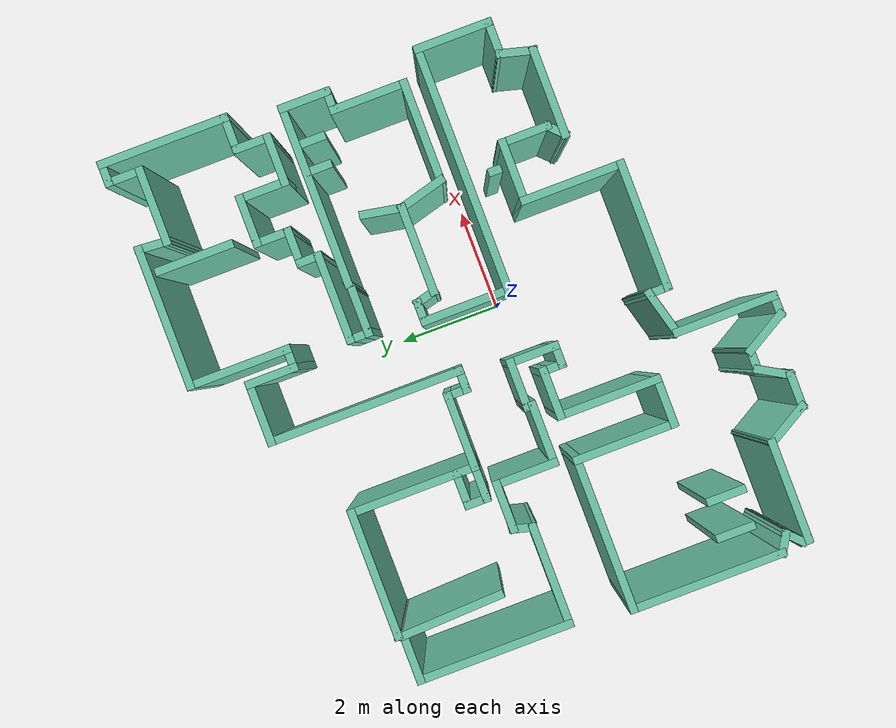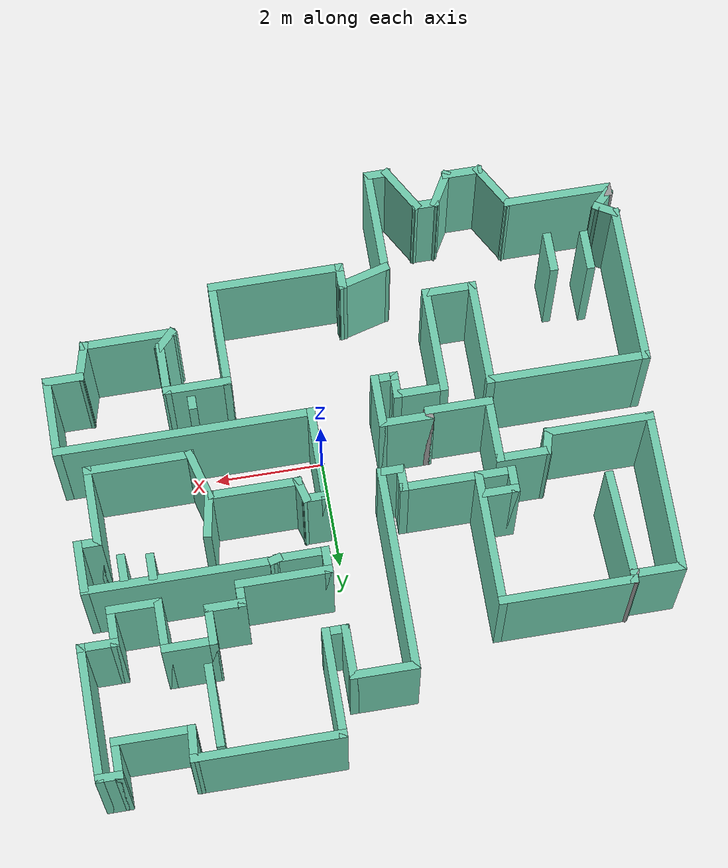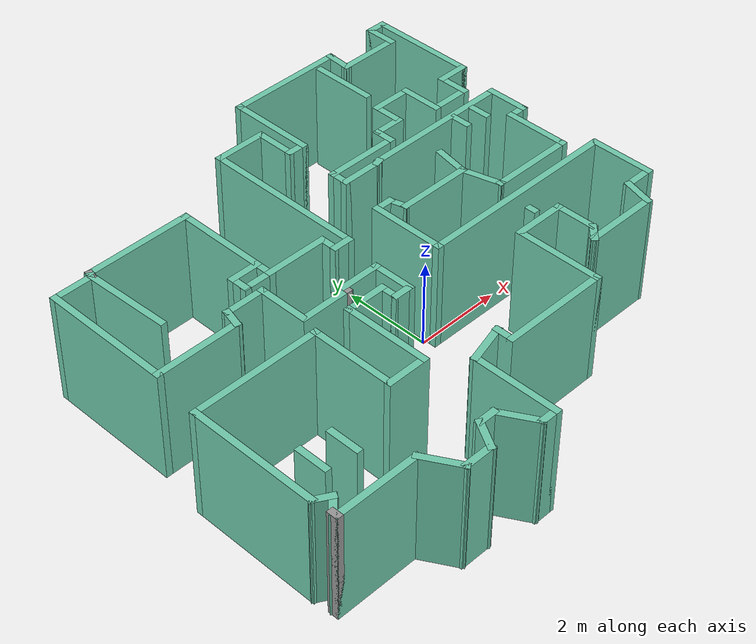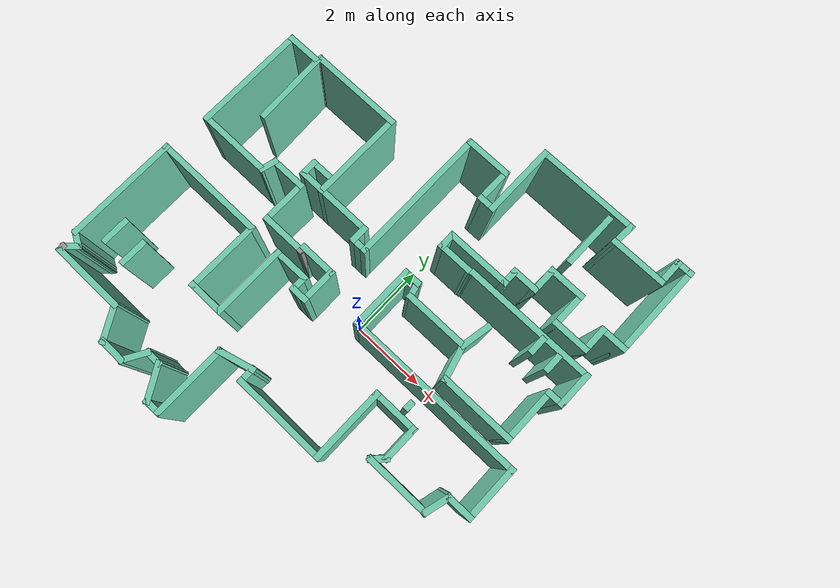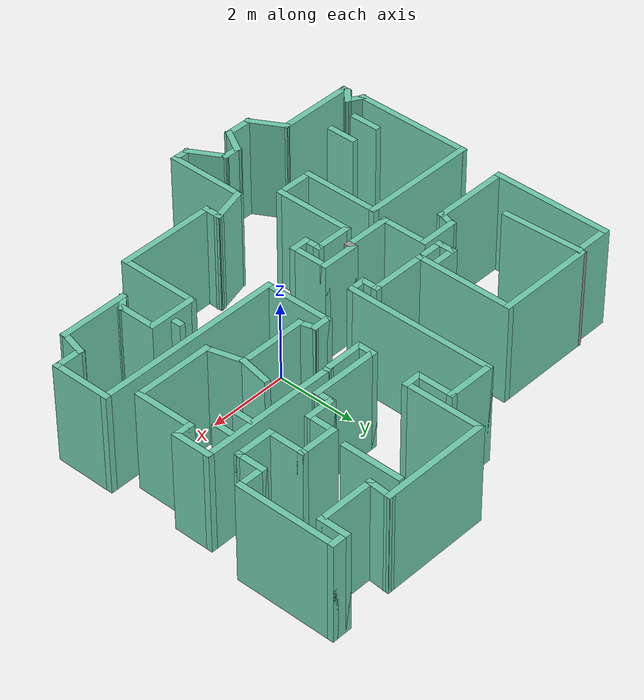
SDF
<sdf version="1.6">
 <model name="map_28">
  <pose>-0.603617 0.610052 0 0 -0 0</pose>
  <link name="Wall_0">
   <collision name="Wall_0_Collision">
    <geometry><box><size>2.75 0.15 2.5</size></box></geometry>
    <pose>0 0 1.25 0 -0 0</pose>
   </collision>
   <visual name="Wall_0_Visual">
    <pose>0 0 1.25 0 -0 0</pose>
    <geometry><box><size>2.75 0.15 2.5</size></box></geometry>
    <material>
     <script><uri>file://media/materials/scripts/gazebo.material</uri><name>Gazebo/Grey</name></script>
     <ambient>0.435294 0.796078 0.67451 1</ambient>
    </material>
    <meta><layer>0</layer></meta>
   </visual>
   <pose>2.44979 5.13882 0 0 -0 3.14159</pose>
  </link>
  <link name="Wall_1">
   <collision name="Wall_1_Collision">
    <geometry><box><size>2 0.15 2.5</size></box></geometry>
    <pose>0 0 1.25 0 -0 0</pose>
   </collision>
   <visual name="Wall_1_Visual">
    <pose>0 0 1.25 0 -0 0</pose>
    <geometry><box><size>2 0.15 2.5</size></box></geometry>
    <material>
     <script><uri>file://media/materials/scripts/gazebo.material</uri><name>Gazebo/Grey</name></script>
     <ambient>0.435294 0.796078 0.67451 1</ambient>
    </material>
    <meta><layer>0</layer></meta>
   </visual>
   <pose>1.14979 4.21382 0 0 -0 -1.5708</pose>
  </link>
  <link name="Wall_10">
   <collision name="Wall_10_Collision">
    <geometry><box><size>2.5 0.15 2.5</size></box></geometry>
    <pose>0 0 1.25 0 -0 0</pose>
   </collision>
   <visual name="Wall_10_Visual">
    <pose>0 0 1.25 0 -0 0</pose>
    <geometry><box><size>2.5 0.15 2.5</size></box></geometry>
    <material>
     <script><uri>file://media/materials/scripts/gazebo.material</uri><name>Gazebo/Grey</name></script>
     <ambient>0.435294 0.796078 0.67451 1</ambient>
    </material>
    <meta><layer>0</layer></meta>
   </visual>
   <pose>-3.17521 3.23882 0 0 -0 3.14159</pose>
  </link>
  <link name="Wall_100">
   <collision name="Wall_100_Collision">
    <geometry><box><size>1 0.15 2.5</size></box></geometry>
    <pose>0 0 1.25 0 -0 0</pose>
   </collision>
   <visual name="Wall_100_Visual">
    <pose>0 0 1.25 0 -0 0</pose>
    <geometry><box><size>1 0.15 2.5</size></box></geometry>
    <material>
     <script><uri>file://media/materials/scripts/gazebo.material</uri><name>Gazebo/Grey</name></script>
     <ambient>0.435294 0.796078 0.67451 1</ambient>
    </material>
    <meta><layer>0</layer></meta>
   </visual>
   <pose>4.38795 2.27226 0 0 -0 0</pose>
  </link>
  <link name="Wall_101">
   <collision name="Wall_101_Collision">
    <geometry><box><size>0.75 0.15 2.5</size></box></geometry>
    <pose>0 0 1.25 0 -0 0</pose>
   </collision>
   <visual name="Wall_101_Visual">
    <pose>0 0 1.25 0 -0 0</pose>
    <geometry><box><size>0.75 0.15 2.5</size></box></geometry>
    <material>
     <script><uri>file://media/materials/scripts/gazebo.material</uri><name>Gazebo/Grey</name></script>
     <ambient>0.435294 0.796078 0.67451 1</ambient>
    </material>
    <meta><layer>0</layer></meta>
   </visual>
   <pose>4.81295 2.57226 0 0 -0 1.5708</pose>
  </link>
  <link name="Wall_102">
   <collision name="Wall_102_Collision">
    <geometry><box><size>0.75 0.15 2.5</size></box></geometry>
    <pose>0 0 1.25 0 -0 0</pose>
   </collision>
   <visual name="Wall_102_Visual">
    <pose>0 0 1.25 0 -0 0</pose>
    <geometry><box><size>0.75 0.15 2.5</size></box></geometry>
    <material>
     <script><uri>file://media/materials/scripts/gazebo.material</uri><name>Gazebo/Grey</name></script>
     <ambient>0.435294 0.796078 0.67451 1</ambient>
    </material>
    <meta><layer>0</layer></meta>
   </visual>
   <pose>5.11295 2.87226 0 0 -0 0</pose>
  </link>
  <link name="Wall_103">
   <collision name="Wall_103_Collision">
    <geometry><box><size>2.5 0.15 2.5</size></box></geometry>
    <pose>0 0 1.25 0 -0 0</pose>
   </collision>
   <visual name="Wall_103_Visual">
    <pose>0 0 1.25 0 -0 0</pose>
    <geometry><box><size>2.5 0.15 2.5</size></box></geometry>
    <material>
     <script><uri>file://media/materials/scripts/gazebo.material</uri><name>Gazebo/Grey</name></script>
     <ambient>0.435294 0.796078 0.67451 1</ambient>
    </material>
    <meta><layer>0</layer></meta>
   </visual>
   <pose>5.41295 4.04726 0 0 -0 1.5708</pose>
  </link>
  <link name="Wall_104">
   <collision name="Wall_104_Collision">
    <geometry><box><size>0.5 0.15 2.5</size></box></geometry>
    <pose>0 0 1.25 0 -0 0</pose>
   </collision>
   <visual name="Wall_104_Visual">
    <pose>0 0 1.25 0 -0 0</pose>
    <geometry><box><size>0.5 0.15 2.5</size></box></geometry>
    <material>
     <script><uri>file://media/materials/scripts/gazebo.material</uri><name>Gazebo/Grey</name></script>
     <ambient>0.435294 0.796078 0.67451 1</ambient>
    </material>
    <meta><layer>0</layer></meta>
   </visual>
   <pose>5.23795 5.22226 0 0 -0 3.14159</pose>
  </link>
  <link name="Wall_105">
   <collision name="Wall_105_Collision">
    <geometry><box><size>0.75 0.15 2.5</size></box></geometry>
    <pose>0 0 1.25 0 -0 0</pose>
   </collision>
   <visual name="Wall_105_Visual">
    <pose>0 0 1.25 0 -0 0</pose>
    <geometry><box><size>0.75 0.15 2.5</size></box></geometry>
    <material>
     <script><uri>file://media/materials/scripts/gazebo.material</uri><name>Gazebo/Grey</name></script>
     <ambient>0.435294 0.796078 0.67451 1</ambient>
    </material>
    <meta><layer>0</layer></meta>
   </visual>
   <pose>5.06295 4.92226 0 0 -0 -1.5708</pose>
  </link>
  <link name="Wall_108">
   <collision name="Wall_108_Collision">
    <geometry><box><size>1.5 0.15 2.5</size></box></geometry>
    <pose>0 0 1.25 0 -0 0</pose>
   </collision>
   <visual name="Wall_108_Visual">
    <pose>0 0 1.25 0 -0 0</pose>
    <geometry><box><size>1.5 0.15 2.5</size></box></geometry>
    <material>
     <script><uri>file://media/materials/scripts/gazebo.material</uri><name>Gazebo/Grey</name></script>
     <ambient>0.435294 0.796078 0.67451 1</ambient>
    </material>
    <meta><layer>0</layer></meta>
   </visual>
   <pose>4.38795 4.62226 0 0 -0 3.14159</pose>
  </link>
  <link name="Wall_109">
   <collision name="Wall_109_Collision">
    <geometry><box><size>0.667875 0.15 2.5</size></box></geometry>
    <pose>0 0 1.25 0 -0 0</pose>
   </collision>
   <visual name="Wall_109_Visual">
    <pose>0 0 1.25 0 -0 0</pose>
    <geometry><box><size>0.667875 0.15 2.5</size></box></geometry>
    <material>
     <script><uri>file://media/materials/scripts/gazebo.material</uri><name>Gazebo/Grey</name></script>
     <ambient>0.435294 0.796078 0.67451 1</ambient>
    </material>
    <meta><layer>0</layer></meta>
   </visual>
   <pose>3.73137 4.88054 0 0 -0 1.4996</pose>
  </link>
  <link name="Wall_11">
   <collision name="Wall_11_Collision">
    <geometry><box><size>0.15 0.15 2.5</size></box></geometry>
    <pose>0 0 1.25 0 -0 0</pose>
   </collision>
   <visual name="Wall_11_Visual">
    <pose>0 0 1.25 0 -0 0</pose>
    <geometry><box><size>0.15 0.15 2.5</size></box></geometry>
    <material>
     <script><uri>file://media/materials/scripts/gazebo.material</uri><name>Gazebo/Grey</name></script>
     <ambient>0.435294 0.796078 0.67451 1</ambient>
    </material>
    <meta><layer>0</layer></meta>
   </visual>
   <pose>-4.3502 3.23882 0 0 -0 0</pose>
  </link>
  <link name="Wall_112">
   <collision name="Wall_112_Collision">
    <geometry><box><size>1.5 0.15 2.5</size></box></geometry>
    <pose>0 0 1.25 0 -0 0</pose>
   </collision>
   <visual name="Wall_112_Visual">
    <pose>0 0 1.25 0 -0 0</pose>
    <geometry><box><size>1.5 0.15 2.5</size></box></geometry>
    <material>
     <script><uri>file://media/materials/scripts/gazebo.material</uri><name>Gazebo/Grey</name></script>
     <ambient>0.435294 0.796078 0.67451 1</ambient>
    </material>
    <meta><layer>0</layer></meta>
   </visual>
   <pose>3.26405 4.26407 0 0 -0 1.5708</pose>
  </link>
  <link name="Wall_114">
   <collision name="Wall_114_Collision">
    <geometry><box><size>2.01778 0.15 2.5</size></box></geometry>
    <pose>0 0 1.25 0 -0 0</pose>
   </collision>
   <visual name="Wall_114_Visual">
    <pose>0 0 1.25 0 -0 0</pose>
    <geometry><box><size>2.01778 0.15 2.5</size></box></geometry>
    <material>
     <script><uri>file://media/materials/scripts/gazebo.material</uri><name>Gazebo/Grey</name></script>
     <ambient>0.435294 0.796078 0.67451 1</ambient>
    </material>
    <meta><layer>0</layer></meta>
   </visual>
   <pose>-4.33787 2.20912 0 0 -0 1.61173</pose>
  </link>
  <link name="Wall_118">
   <collision name="Wall_118_Collision">
    <geometry><box><size>0.75 0.15 2.5</size></box></geometry>
    <pose>0 0 1.25 0 -0 0</pose>
   </collision>
   <visual name="Wall_118_Visual">
    <pose>0 0 1.25 0 -0 0</pose>
    <geometry><box><size>0.75 0.15 2.5</size></box></geometry>
    <material>
     <script><uri>file://media/materials/scripts/gazebo.material</uri><name>Gazebo/Grey</name></script>
     <ambient>0.435294 0.796078 0.67451 1</ambient>
    </material>
    <meta><layer>0</layer></meta>
   </visual>
   <pose>-2.30021 0.888824 0 0 -0 3.14159</pose>
  </link>
  <link name="Wall_119">
   <collision name="Wall_119_Collision">
    <geometry><box><size>0.5 0.15 2.5</size></box></geometry>
    <pose>0 0 1.25 0 -0 0</pose>
   </collision>
   <visual name="Wall_119_Visual">
    <pose>0 0 1.25 0 -0 0</pose>
    <geometry><box><size>0.5 0.15 2.5</size></box></geometry>
    <material>
     <script><uri>file://media/materials/scripts/gazebo.material</uri><name>Gazebo/Grey</name></script>
     <ambient>0.435294 0.796078 0.67451 1</ambient>
    </material>
    <meta><layer>0</layer></meta>
   </visual>
   <pose>-2.6002 1.06382 0 0 -0 1.5708</pose>
  </link>
  <link name="Wall_120">
   <collision name="Wall_120_Collision">
    <geometry><box><size>0.75 0.15 2.5</size></box></geometry>
    <pose>0 0 1.25 0 -0 0</pose>
   </collision>
   <visual name="Wall_120_Visual">
    <pose>0 0 1.25 0 -0 0</pose>
    <geometry><box><size>0.75 0.15 2.5</size></box></geometry>
    <material>
     <script><uri>file://media/materials/scripts/gazebo.material</uri><name>Gazebo/Grey</name></script>
     <ambient>0.435294 0.796078 0.67451 1</ambient>
    </material>
    <meta><layer>0</layer></meta>
   </visual>
   <pose>-2.30021 1.23882 0 0 -0 0</pose>
  </link>
  <link name="Wall_122">
   <collision name="Wall_122_Collision">
    <geometry><box><size>0.852849 0.15 2.5</size></box></geometry>
    <pose>0 0 1.25 0 -0 0</pose>
   </collision>
   <visual name="Wall_122_Visual">
    <pose>0 0 1.25 0 -0 0</pose>
    <geometry><box><size>0.852849 0.15 2.5</size></box></geometry>
    <material>
     <script><uri>file://media/materials/scripts/gazebo.material</uri><name>Gazebo/Grey</name></script>
     <ambient>0.435294 0.796078 0.67451 1</ambient>
    </material>
    <meta><layer>0</layer></meta>
   </visual>
   <pose>2.85332 0.81477 0 0 -0 -1.75327</pose>
  </link>
  <link name="Wall_124">
   <collision name="Wall_124_Collision">
    <geometry><box><size>0.5 0.15 2.5</size></box></geometry>
    <pose>0 0 1.25 0 -0 0</pose>
   </collision>
   <visual name="Wall_124_Visual">
    <pose>0 0 1.25 0 -0 0</pose>
    <geometry><box><size>0.5 0.15 2.5</size></box></geometry>
    <material>
     <script><uri>file://media/materials/scripts/gazebo.material</uri><name>Gazebo/Grey</name></script>
     <ambient>0.435294 0.796078 0.67451 1</ambient>
    </material>
    <meta><layer>0</layer></meta>
   </visual>
   <pose>3.9811 1.60989 0 0 -0 -1.5708</pose>
  </link>
  <link name="Wall_126">
   <collision name="Wall_126_Collision">
    <geometry><box><size>0.5 0.15 2.5</size></box></geometry>
    <pose>0 0 1.25 0 -0 0</pose>
   </collision>
   <visual name="Wall_126_Visual">
    <pose>0 0 1.25 0 -0 0</pose>
    <geometry><box><size>0.5 0.15 2.5</size></box></geometry>
    <material>
     <script><uri>file://media/materials/scripts/gazebo.material</uri><name>Gazebo/Grey</name></script>
     <ambient>0.435294 0.796078 0.67451 1</ambient>
    </material>
    <meta><layer>0</layer></meta>
   </visual>
   <pose>4.48997 1.54049 0 0 -0 -1.5708</pose>
  </link>
  <link name="Wall_128">
   <collision name="Wall_128_Collision">
    <geometry><box><size>0.25 0.15 2.5</size></box></geometry>
    <pose>0 0 1.25 0 -0 0</pose>
   </collision>
   <visual name="Wall_128_Visual">
    <pose>0 0 1.25 0 -0 0</pose>
    <geometry><box><size>0.25 0.15 2.5</size></box></geometry>
    <material>
     <script><uri>file://media/materials/scripts/gazebo.material</uri><name>Gazebo/Grey</name></script>
     <ambient>0.435294 0.796078 0.67451 1</ambient>
    </material>
    <meta><layer>0</layer></meta>
   </visual>
   <pose>2.82457 -1.31835 0 0 -0 -1.5708</pose>
  </link>
  <link name="Wall_130">
   <collision name="Wall_130_Collision">
    <geometry><box><size>0.75 0.15 2.5</size></box></geometry>
    <pose>0 0 1.25 0 -0 0</pose>
   </collision>
   <visual name="Wall_130_Visual">
    <pose>0 0 1.25 0 -0 0</pose>
    <geometry><box><size>0.75 0.15 2.5</size></box></geometry>
    <material>
     <script><uri>file://media/materials/scripts/gazebo.material</uri><name>Gazebo/Grey</name></script>
     <ambient>0.435294 0.796078 0.67451 1</ambient>
    </material>
    <meta><layer>0</layer></meta>
   </visual>
   <pose>-4.73914 -3.07184 0 0 -0 -1.5708</pose>
  </link>
  <link name="Wall_132">
   <collision name="Wall_132_Collision">
    <geometry><box><size>0.75 0.15 2.5</size></box></geometry>
    <pose>0 0 1.25 0 -0 0</pose>
   </collision>
   <visual name="Wall_132_Visual">
    <pose>0 0 1.25 0 -0 0</pose>
    <geometry><box><size>0.75 0.15 2.5</size></box></geometry>
    <material>
     <script><uri>file://media/materials/scripts/gazebo.material</uri><name>Gazebo/Grey</name></script>
     <ambient>0.435294 0.796078 0.67451 1</ambient>
    </material>
    <meta><layer>0</layer></meta>
   </visual>
   <pose>-4.06835 -3.14124 0 0 -0 -1.5708</pose>
  </link>
  <link name="Wall_14">
   <collision name="Wall_14_Collision">
    <geometry><box><size>0.25 0.15 2.5</size></box></geometry>
    <pose>0 0 1.25 0 -0 0</pose>
   </collision>
   <visual name="Wall_14_Visual">
    <pose>0 0 1.25 0 -0 0</pose>
    <geometry><box><size>0.25 0.15 2.5</size></box></geometry>
    <material>
     <script><uri>file://media/materials/scripts/gazebo.material</uri><name>Gazebo/Grey</name></script>
     <ambient>1 1 1 1</ambient>
    </material>
    <meta><layer>0</layer></meta>
   </visual>
   <pose>-4.36315 3.19053 0 0 -0 -1.8326</pose>
  </link>
  <link name="Wall_15">
   <collision name="Wall_15_Collision">
    <geometry><box><size>1 0.15 2.5</size></box></geometry>
    <pose>0 0 1.25 0 -0 0</pose>
   </collision>
   <visual name="Wall_15_Visual">
    <pose>0 0 1.25 0 -0 0</pose>
    <geometry><box><size>1 0.15 2.5</size></box></geometry>
    <material>
     <script><uri>file://media/materials/scripts/gazebo.material</uri><name>Gazebo/Grey</name></script>
     <ambient>0.435294 0.796078 0.67451 1</ambient>
    </material>
    <meta><layer>0</layer></meta>
   </visual>
   <pose>-4.80109 3.14223 0 0 -0 3.14159</pose>
  </link>
  <link name="Wall_16">
   <collision name="Wall_16_Collision">
    <geometry><box><size>3 0.15 2.5</size></box></geometry>
    <pose>0 0 1.25 0 -0 0</pose>
   </collision>
   <visual name="Wall_16_Visual">
    <pose>0 0 1.25 0 -0 0</pose>
    <geometry><box><size>3 0.15 2.5</size></box></geometry>
    <material>
     <script><uri>file://media/materials/scripts/gazebo.material</uri><name>Gazebo/Grey</name></script>
     <ambient>0.435294 0.796078 0.67451 1</ambient>
    </material>
    <meta><layer>0</layer></meta>
   </visual>
   <pose>-5.22609 1.71723 0 0 -0 -1.5708</pose>
  </link>
  <link name="Wall_17">
   <collision name="Wall_17_Collision">
    <geometry><box><size>2 0.15 2.5</size></box></geometry>
    <pose>0 0 1.25 0 -0 0</pose>
   </collision>
   <visual name="Wall_17_Visual">
    <pose>0 0 1.25 0 -0 0</pose>
    <geometry><box><size>2 0.15 2.5</size></box></geometry>
    <material>
     <script><uri>file://media/materials/scripts/gazebo.material</uri><name>Gazebo/Grey</name></script>
     <ambient>0.435294 0.796078 0.67451 1</ambient>
    </material>
    <meta><layer>0</layer></meta>
   </visual>
   <pose>-4.30109 0.292231 0 0 -0 0</pose>
  </link>
  <link name="Wall_18">
   <collision name="Wall_18_Collision">
    <geometry><box><size>0.5 0.15 2.5</size></box></geometry>
    <pose>0 0 1.25 0 -0 0</pose>
   </collision>
   <visual name="Wall_18_Visual">
    <pose>0 0 1.25 0 -0 0</pose>
    <geometry><box><size>0.5 0.15 2.5</size></box></geometry>
    <material>
     <script><uri>file://media/materials/scripts/gazebo.material</uri><name>Gazebo/Grey</name></script>
     <ambient>0.435294 0.796078 0.67451 1</ambient>
    </material>
    <meta><layer>0</layer></meta>
   </visual>
   <pose>-3.33079 0.461268 0 0 -0 1.309</pose>
  </link>
  <link name="Wall_19">
   <collision name="Wall_19_Collision">
    <geometry><box><size>1 0.15 2.5</size></box></geometry>
    <pose>0 0 1.25 0 -0 0</pose>
   </collision>
   <visual name="Wall_19_Visual">
    <pose>0 0 1.25 0 -0 0</pose>
    <geometry><box><size>1 0.15 2.5</size></box></geometry>
    <material>
     <script><uri>file://media/materials/scripts/gazebo.material</uri><name>Gazebo/Grey</name></script>
     <ambient>0.435294 0.796078 0.67451 1</ambient>
    </material>
    <meta><layer>0</layer></meta>
   </visual>
   <pose>-2.8605 0.630306 0 0 -0 0</pose>
  </link>
  <link name="Wall_2">
   <collision name="Wall_2_Collision">
    <geometry><box><size>0.5 0.15 2.5</size></box></geometry>
    <pose>0 0 1.25 0 -0 0</pose>
   </collision>
   <visual name="Wall_2_Visual">
    <pose>0 0 1.25 0 -0 0</pose>
    <geometry><box><size>0.5 0.15 2.5</size></box></geometry>
    <material>
     <script><uri>file://media/materials/scripts/gazebo.material</uri><name>Gazebo/Grey</name></script>
     <ambient>0.435294 0.796078 0.67451 1</ambient>
    </material>
    <meta><layer>0</layer></meta>
   </visual>
   <pose>0.974795 3.28882 0 0 -0 3.14159</pose>
  </link>
  <link name="Wall_22">
   <collision name="Wall_22_Collision">
    <geometry><box><size>1.25 0.15 2.5</size></box></geometry>
    <pose>0 0 1.25 0 -0 0</pose>
   </collision>
   <visual name="Wall_22_Visual">
    <pose>0 0 1.25 0 -0 0</pose>
    <geometry><box><size>1.25 0.15 2.5</size></box></geometry>
    <material>
     <script><uri>file://media/materials/scripts/gazebo.material</uri><name>Gazebo/Grey</name></script>
     <ambient>0.435294 0.796078 0.67451 1</ambient>
    </material>
    <meta><layer>0</layer></meta>
   </visual>
   <pose>-2.4355 0.080305 0 0 -0 -1.5708</pose>
  </link>
  <link name="Wall_23">
   <collision name="Wall_23_Collision">
    <geometry><box><size>1.25 0.15 2.5</size></box></geometry>
    <pose>0 0 1.25 0 -0 0</pose>
   </collision>
   <visual name="Wall_23_Visual">
    <pose>0 0 1.25 0 -0 0</pose>
    <geometry><box><size>1.25 0.15 2.5</size></box></geometry>
    <material>
     <script><uri>file://media/materials/scripts/gazebo.material</uri><name>Gazebo/Grey</name></script>
     <ambient>0.435294 0.796078 0.67451 1</ambient>
    </material>
    <meta><layer>0</layer></meta>
   </visual>
   <pose>-1.8855 -0.469695 0 0 -0 0</pose>
  </link>
  <link name="Wall_24">
   <collision name="Wall_24_Collision">
    <geometry><box><size>0.25 0.15 2.5</size></box></geometry>
    <pose>0 0 1.25 0 -0 0</pose>
   </collision>
   <visual name="Wall_24_Visual">
    <pose>0 0 1.25 0 -0 0</pose>
    <geometry><box><size>0.25 0.15 2.5</size></box></geometry>
    <material>
     <script><uri>file://media/materials/scripts/gazebo.material</uri><name>Gazebo/Grey</name></script>
     <ambient>1 1 1 1</ambient>
    </material>
    <meta><layer>0</layer></meta>
   </visual>
   <pose>-1.3355 -0.419695 0 0 -0 1.5708</pose>
  </link>
  <link name="Wall_25">
   <collision name="Wall_25_Collision">
    <geometry><box><size>1 0.15 2.5</size></box></geometry>
    <pose>0 0 1.25 0 -0 0</pose>
   </collision>
   <visual name="Wall_25_Visual">
    <pose>0 0 1.25 0 -0 0</pose>
    <geometry><box><size>1 0.15 2.5</size></box></geometry>
    <material>
     <script><uri>file://media/materials/scripts/gazebo.material</uri><name>Gazebo/Grey</name></script>
     <ambient>0.435294 0.796078 0.67451 1</ambient>
    </material>
    <meta><layer>0</layer></meta>
   </visual>
   <pose>-0.910501 -0.369695 0 0 -0 0</pose>
  </link>
  <link name="Wall_26">
   <collision name="Wall_26_Collision">
    <geometry><box><size>1 0.15 2.5</size></box></geometry>
    <pose>0 0 1.25 0 -0 0</pose>
   </collision>
   <visual name="Wall_26_Visual">
    <pose>0 0 1.25 0 -0 0</pose>
    <geometry><box><size>1 0.15 2.5</size></box></geometry>
    <material>
     <script><uri>file://media/materials/scripts/gazebo.material</uri><name>Gazebo/Grey</name></script>
     <ambient>0.435294 0.796078 0.67451 1</ambient>
    </material>
    <meta><layer>0</layer></meta>
   </visual>
   <pose>-0.485501 -0.794695 0 0 -0 -1.5708</pose>
  </link>
  <link name="Wall_27">
   <collision name="Wall_27_Collision">
    <geometry><box><size>0.5 0.15 2.5</size></box></geometry>
    <pose>0 0 1.25 0 -0 0</pose>
   </collision>
   <visual name="Wall_27_Visual">
    <pose>0 0 1.25 0 -0 0</pose>
    <geometry><box><size>0.5 0.15 2.5</size></box></geometry>
    <material>
     <script><uri>file://media/materials/scripts/gazebo.material</uri><name>Gazebo/Grey</name></script>
     <ambient>0.435294 0.796078 0.67451 1</ambient>
    </material>
    <meta><layer>0</layer></meta>
   </visual>
   <pose>-0.660501 -1.21969 0 0 -0 3.14159</pose>
  </link>
  <link name="Wall_3">
   <collision name="Wall_3_Collision">
    <geometry><box><size>1 0.15 2.5</size></box></geometry>
    <pose>0 0 1.25 0 -0 0</pose>
   </collision>
   <visual name="Wall_3_Visual">
    <pose>0 0 1.25 0 -0 0</pose>
    <geometry><box><size>1 0.15 2.5</size></box></geometry>
    <material>
     <script><uri>file://media/materials/scripts/gazebo.material</uri><name>Gazebo/Grey</name></script>
     <ambient>0.435294 0.796078 0.67451 1</ambient>
    </material>
    <meta><layer>0</layer></meta>
   </visual>
   <pose>0.799795 3.71382 0 0 -0 1.5708</pose>
  </link>
  <link name="Wall_34">
   <collision name="Wall_34_Collision">
    <geometry><box><size>0.5 0.15 2.5</size></box></geometry>
    <pose>0 0 1.25 0 -0 0</pose>
   </collision>
   <visual name="Wall_34_Visual">
    <pose>0 0 1.25 0 -0 0</pose>
    <geometry><box><size>0.5 0.15 2.5</size></box></geometry>
    <material>
     <script><uri>file://media/materials/scripts/gazebo.material</uri><name>Gazebo/Grey</name></script>
     <ambient>0.435294 0.796078 0.67451 1</ambient>
    </material>
    <meta><layer>0</layer></meta>
   </visual>
   <pose>-0.835501 -1.04469 0 0 -0 1.5708</pose>
  </link>
  <link name="Wall_37">
   <collision name="Wall_37_Collision">
    <geometry><box><size>1 0.15 2.5</size></box></geometry>
    <pose>0 0 1.25 0 -0 0</pose>
   </collision>
   <visual name="Wall_37_Visual">
    <pose>0 0 1.25 0 -0 0</pose>
    <geometry><box><size>1 0.15 2.5</size></box></geometry>
    <material>
     <script><uri>file://media/materials/scripts/gazebo.material</uri><name>Gazebo/Grey</name></script>
     <ambient>0.435294 0.796078 0.67451 1</ambient>
    </material>
    <meta><layer>0</layer></meta>
   </visual>
   <pose>-1.2605 -0.869695 0 0 -0 3.14159</pose>
  </link>
  <link name="Wall_38">
   <collision name="Wall_38_Collision">
    <geometry><box><size>2 0.15 2.5</size></box></geometry>
    <pose>0 0 1.25 0 -0 0</pose>
   </collision>
   <visual name="Wall_38_Visual">
    <pose>0 0 1.25 0 -0 0</pose>
    <geometry><box><size>2 0.15 2.5</size></box></geometry>
    <material>
     <script><uri>file://media/materials/scripts/gazebo.material</uri><name>Gazebo/Grey</name></script>
     <ambient>0.435294 0.796078 0.67451 1</ambient>
    </material>
    <meta><layer>0</layer></meta>
   </visual>
   <pose>-1.6855 -1.79469 0 0 -0 -1.5708</pose>
  </link>
  <link name="Wall_39">
   <collision name="Wall_39_Collision">
    <geometry><box><size>1 0.15 2.5</size></box></geometry>
    <pose>0 0 1.25 0 -0 0</pose>
   </collision>
   <visual name="Wall_39_Visual">
    <pose>0 0 1.25 0 -0 0</pose>
    <geometry><box><size>1 0.15 2.5</size></box></geometry>
    <material>
     <script><uri>file://media/materials/scripts/gazebo.material</uri><name>Gazebo/Grey</name></script>
     <ambient>0.435294 0.796078 0.67451 1</ambient>
    </material>
    <meta><layer>0</layer></meta>
   </visual>
   <pose>-2.1105 -2.7197 0 0 -0 3.14159</pose>
  </link>
  <link name="Wall_4">
   <collision name="Wall_4_Collision">
    <geometry><box><size>1.25 0.15 2.5</size></box></geometry>
    <pose>0 0 1.25 0 -0 0</pose>
   </collision>
   <visual name="Wall_4_Visual">
    <pose>0 0 1.25 0 -0 0</pose>
    <geometry><box><size>1.25 0.15 2.5</size></box></geometry>
    <material>
     <script><uri>file://media/materials/scripts/gazebo.material</uri><name>Gazebo/Grey</name></script>
     <ambient>0.435294 0.796078 0.67451 1</ambient>
    </material>
    <meta><layer>0</layer></meta>
   </visual>
   <pose>0.249795 4.13882 0 0 -0 3.14159</pose>
  </link>
  <link name="Wall_42">
   <collision name="Wall_42_Collision">
    <geometry><box><size>2 0.15 2.5</size></box></geometry>
    <pose>0 0 1.25 0 -0 0</pose>
   </collision>
   <visual name="Wall_42_Visual">
    <pose>0 0 1.25 0 -0 0</pose>
    <geometry><box><size>2 0.15 2.5</size></box></geometry>
    <material>
     <script><uri>file://media/materials/scripts/gazebo.material</uri><name>Gazebo/Grey</name></script>
     <ambient>0.435294 0.796078 0.67451 1</ambient>
    </material>
    <meta><layer>0</layer></meta>
   </visual>
   <pose>-2.5355 -1.79469 0 0 -0 1.5708</pose>
  </link>
  <link name="Wall_43">
   <collision name="Wall_43_Collision">
    <geometry><box><size>3 0.15 2.5</size></box></geometry>
    <pose>0 0 1.25 0 -0 0</pose>
   </collision>
   <visual name="Wall_43_Visual">
    <pose>0 0 1.25 0 -0 0</pose>
    <geometry><box><size>3 0.15 2.5</size></box></geometry>
    <material>
     <script><uri>file://media/materials/scripts/gazebo.material</uri><name>Gazebo/Grey</name></script>
     <ambient>0.435294 0.796078 0.67451 1</ambient>
    </material>
    <meta><layer>0</layer></meta>
   </visual>
   <pose>-3.9605 -0.869695 0 0 -0 3.14159</pose>
  </link>
  <link name="Wall_44">
   <collision name="Wall_44_Collision">
    <geometry><box><size>3 0.15 2.5</size></box></geometry>
    <pose>0 0 1.25 0 -0 0</pose>
   </collision>
   <visual name="Wall_44_Visual">
    <pose>0 0 1.25 0 -0 0</pose>
    <geometry><box><size>3 0.15 2.5</size></box></geometry>
    <material>
     <script><uri>file://media/materials/scripts/gazebo.material</uri><name>Gazebo/Grey</name></script>
     <ambient>0.435294 0.796078 0.67451 1</ambient>
    </material>
    <meta><layer>0</layer></meta>
   </visual>
   <pose>-5.3855 -2.29469 0 0 -0 -1.5708</pose>
  </link>
  <link name="Wall_45">
   <collision name="Wall_45_Collision">
    <geometry><box><size>0.5 0.15 2.5</size></box></geometry>
    <pose>0 0 1.25 0 -0 0</pose>
   </collision>
   <visual name="Wall_45_Visual">
    <pose>0 0 1.25 0 -0 0</pose>
    <geometry><box><size>0.5 0.15 2.5</size></box></geometry>
    <material>
     <script><uri>file://media/materials/scripts/gazebo.material</uri><name>Gazebo/Grey</name></script>
     <ambient>0.435294 0.796078 0.67451 1</ambient>
    </material>
    <meta><layer>0</layer></meta>
   </visual>
   <pose>-5.23395 -3.80719 0 0 -0 -0.523599</pose>
  </link>
  <link name="Wall_46">
   <collision name="Wall_46_Collision">
    <geometry><box><size>0.5 0.15 2.5</size></box></geometry>
    <pose>0 0 1.25 0 -0 0</pose>
   </collision>
   <visual name="Wall_46_Visual">
    <pose>0 0 1.25 0 -0 0</pose>
    <geometry><box><size>0.5 0.15 2.5</size></box></geometry>
    <material>
     <script><uri>file://media/materials/scripts/gazebo.material</uri><name>Gazebo/Grey</name></script>
     <ambient>0.435294 0.796078 0.67451 1</ambient>
    </material>
    <meta><layer>0</layer></meta>
   </visual>
   <pose>-5.20614 -4.01844 0 0 -0 -2.35619</pose>
  </link>
  <link name="Wall_47">
   <collision name="Wall_47_Collision">
    <geometry><box><size>0.25 0.15 2.5</size></box></geometry>
    <pose>0 0 1.25 0 -0 0</pose>
   </collision>
   <visual name="Wall_47_Visual">
    <pose>0 0 1.25 0 -0 0</pose>
    <geometry><box><size>0.25 0.15 2.5</size></box></geometry>
    <material>
     <script><uri>file://media/materials/scripts/gazebo.material</uri><name>Gazebo/Grey</name></script>
     <ambient>1 1 1 1</ambient>
    </material>
    <meta><layer>0</layer></meta>
   </visual>
   <pose>-5.32988 -4.19218 0 0 -0 -1.5708</pose>
  </link>
  <link name="Wall_48">
   <collision name="Wall_48_Collision">
    <geometry><box><size>2 0.15 2.5</size></box></geometry>
    <pose>0 0 1.25 0 -0 0</pose>
   </collision>
   <visual name="Wall_48_Visual">
    <pose>0 0 1.25 0 -0 0</pose>
    <geometry><box><size>2 0.15 2.5</size></box></geometry>
    <material>
     <script><uri>file://media/materials/scripts/gazebo.material</uri><name>Gazebo/Grey</name></script>
     <ambient>0.435294 0.796078 0.67451 1</ambient>
    </material>
    <meta><layer>0</layer></meta>
   </visual>
   <pose>-4.40488 -4.24218 0 0 -0 0</pose>
  </link>
  <link name="Wall_49">
   <collision name="Wall_49_Collision">
    <geometry><box><size>1 0.15 2.5</size></box></geometry>
    <pose>0 0 1.25 0 -0 0</pose>
   </collision>
   <visual name="Wall_49_Visual">
    <pose>0 0 1.25 0 -0 0</pose>
    <geometry><box><size>1 0.15 2.5</size></box></geometry>
    <material>
     <script><uri>file://media/materials/scripts/gazebo.material</uri><name>Gazebo/Grey</name></script>
     <ambient>0.435294 0.796078 0.67451 1</ambient>
    </material>
    <meta><layer>0</layer></meta>
   </visual>
   <pose>-3.26738 -4.61024 0 0 -0 -1.0472</pose>
  </link>
  <link name="Wall_5">
   <collision name="Wall_5_Collision">
    <geometry><box><size>3.75 0.15 2.5</size></box></geometry>
    <pose>0 0 1.25 0 -0 0</pose>
   </collision>
   <visual name="Wall_5_Visual">
    <pose>0 0 1.25 0 -0 0</pose>
    <geometry><box><size>3.75 0.15 2.5</size></box></geometry>
    <material>
     <script><uri>file://media/materials/scripts/gazebo.material</uri><name>Gazebo/Grey</name></script>
     <ambient>0.435294 0.796078 0.67451 1</ambient>
    </material>
    <meta><layer>0</layer></meta>
   </visual>
   <pose>-0.300205 2.33882 0 0 -0 -1.5708</pose>
  </link>
  <link name="Wall_50">
   <collision name="Wall_50_Collision">
    <geometry><box><size>0.75 0.15 2.5</size></box></geometry>
    <pose>0 0 1.25 0 -0 0</pose>
   </collision>
   <visual name="Wall_50_Visual">
    <pose>0 0 1.25 0 -0 0</pose>
    <geometry><box><size>0.75 0.15 2.5</size></box></geometry>
    <material>
     <script><uri>file://media/materials/scripts/gazebo.material</uri><name>Gazebo/Grey</name></script>
     <ambient>0.435294 0.796078 0.67451 1</ambient>
    </material>
    <meta><layer>0</layer></meta>
   </visual>
   <pose>-2.75488 -4.9783 0 0 -0 0</pose>
  </link>
  <link name="Wall_51">
   <collision name="Wall_51_Collision">
    <geometry><box><size>0.75 0.15 2.5</size></box></geometry>
    <pose>0 0 1.25 0 -0 0</pose>
   </collision>
   <visual name="Wall_51_Visual">
    <pose>0 0 1.25 0 -0 0</pose>
    <geometry><box><size>0.75 0.15 2.5</size></box></geometry>
    <material>
     <script><uri>file://media/materials/scripts/gazebo.material</uri><name>Gazebo/Grey</name></script>
     <ambient>0.435294 0.796078 0.67451 1</ambient>
    </material>
    <meta><layer>0</layer></meta>
   </visual>
   <pose>-2.30488 -4.7185 0 0 -0 1.0472</pose>
  </link>
  <link name="Wall_52">
   <collision name="Wall_52_Collision">
    <geometry><box><size>0.5 0.15 2.5</size></box></geometry>
    <pose>0 0 1.25 0 -0 0</pose>
   </collision>
   <visual name="Wall_52_Visual">
    <pose>0 0 1.25 0 -0 0</pose>
    <geometry><box><size>0.5 0.15 2.5</size></box></geometry>
    <material>
     <script><uri>file://media/materials/scripts/gazebo.material</uri><name>Gazebo/Grey</name></script>
     <ambient>0.435294 0.796078 0.67451 1</ambient>
    </material>
    <meta><layer>0</layer></meta>
   </visual>
   <pose>-1.97988 -4.45869 0 0 -0 0</pose>
  </link>
  <link name="Wall_55">
   <collision name="Wall_55_Collision">
    <geometry><box><size>1 0.15 2.5</size></box></geometry>
    <pose>0 0 1.25 0 -0 0</pose>
   </collision>
   <visual name="Wall_55_Visual">
    <pose>0 0 1.25 0 -0 0</pose>
    <geometry><box><size>1 0.15 2.5</size></box></geometry>
    <material>
     <script><uri>file://media/materials/scripts/gazebo.material</uri><name>Gazebo/Grey</name></script>
     <ambient>0.435294 0.796078 0.67451 1</ambient>
    </material>
    <meta><layer>0</layer></meta>
   </visual>
   <pose>-1.59238 -4.82675 0 0 -0 -1.0472</pose>
  </link>
  <link name="Wall_56">
   <collision name="Wall_56_Collision">
    <geometry><box><size>0.5 0.15 2.5</size></box></geometry>
    <pose>0 0 1.25 0 -0 0</pose>
   </collision>
   <visual name="Wall_56_Visual">
    <pose>0 0 1.25 0 -0 0</pose>
    <geometry><box><size>0.5 0.15 2.5</size></box></geometry>
    <material>
     <script><uri>file://media/materials/scripts/gazebo.material</uri><name>Gazebo/Grey</name></script>
     <ambient>0.435294 0.796078 0.67451 1</ambient>
    </material>
    <meta><layer>0</layer></meta>
   </visual>
   <pose>-1.20488 -5.19481 0 0 -0 0</pose>
  </link>
  <link name="Wall_57">
   <collision name="Wall_57_Collision">
    <geometry><box><size>2 0.15 2.5</size></box></geometry>
    <pose>0 0 1.25 0 -0 0</pose>
   </collision>
   <visual name="Wall_57_Visual">
    <pose>0 0 1.25 0 -0 0</pose>
    <geometry><box><size>2 0.15 2.5</size></box></geometry>
    <material>
     <script><uri>file://media/materials/scripts/gazebo.material</uri><name>Gazebo/Grey</name></script>
     <ambient>0.435294 0.796078 0.67451 1</ambient>
    </material>
    <meta><layer>0</layer></meta>
   </visual>
   <pose>-1.02988 -4.26981 0 0 -0 1.5708</pose>
  </link>
  <link name="Wall_58">
   <collision name="Wall_58_Collision">
    <geometry><box><size>1 0.15 2.5</size></box></geometry>
    <pose>0 0 1.25 0 -0 0</pose>
   </collision>
   <visual name="Wall_58_Visual">
    <pose>0 0 1.25 0 -0 0</pose>
    <geometry><box><size>1 0.15 2.5</size></box></geometry>
    <material>
     <script><uri>file://media/materials/scripts/gazebo.material</uri><name>Gazebo/Grey</name></script>
     <ambient>0.435294 0.796078 0.67451 1</ambient>
    </material>
    <meta><layer>0</layer></meta>
   </visual>
   <pose>-0.619361 -3.23481 0 0 -0 0.261799</pose>
  </link>
  <link name="Wall_59">
   <collision name="Wall_59_Collision">
    <geometry><box><size>0.5 0.15 2.5</size></box></geometry>
    <pose>0 0 1.25 0 -0 0</pose>
   </collision>
   <visual name="Wall_59_Visual">
    <pose>0 0 1.25 0 -0 0</pose>
    <geometry><box><size>0.5 0.15 2.5</size></box></geometry>
    <material>
     <script><uri>file://media/materials/scripts/gazebo.material</uri><name>Gazebo/Grey</name></script>
     <ambient>0.435294 0.796078 0.67451 1</ambient>
    </material>
    <meta><layer>0</layer></meta>
   </visual>
   <pose>-0.208842 -3.29981 0 0 -0 -1.5708</pose>
  </link>
  <link name="Wall_6">
   <collision name="Wall_6_Collision">
    <geometry><box><size>0.5 0.15 2.5</size></box></geometry>
    <pose>0 0 1.25 0 -0 0</pose>
   </collision>
   <visual name="Wall_6_Visual">
    <pose>0 0 1.25 0 -0 0</pose>
    <geometry><box><size>0.5 0.15 2.5</size></box></geometry>
    <material>
     <script><uri>file://media/materials/scripts/gazebo.material</uri><name>Gazebo/Grey</name></script>
     <ambient>0.435294 0.796078 0.67451 1</ambient>
    </material>
    <meta><layer>0</layer></meta>
   </visual>
   <pose>-0.475205 0.538824 0 0 -0 3.14159</pose>
  </link>
  <link name="Wall_60">
   <collision name="Wall_60_Collision">
    <geometry><box><size>2.5 0.15 2.5</size></box></geometry>
    <pose>0 0 1.25 0 -0 0</pose>
   </collision>
   <visual name="Wall_60_Visual">
    <pose>0 0 1.25 0 -0 0</pose>
    <geometry><box><size>2.5 0.15 2.5</size></box></geometry>
    <material>
     <script><uri>file://media/materials/scripts/gazebo.material</uri><name>Gazebo/Grey</name></script>
     <ambient>0.435294 0.796078 0.67451 1</ambient>
    </material>
    <meta><layer>0</layer></meta>
   </visual>
   <pose>0.966158 -3.47481 0 0 -0 0</pose>
  </link>
  <link name="Wall_61">
   <collision name="Wall_61_Collision">
    <geometry><box><size>2 0.15 2.5</size></box></geometry>
    <pose>0 0 1.25 0 -0 0</pose>
   </collision>
   <visual name="Wall_61_Visual">
    <pose>0 0 1.25 0 -0 0</pose>
    <geometry><box><size>2 0.15 2.5</size></box></geometry>
    <material>
     <script><uri>file://media/materials/scripts/gazebo.material</uri><name>Gazebo/Grey</name></script>
     <ambient>0.435294 0.796078 0.67451 1</ambient>
    </material>
    <meta><layer>0</layer></meta>
   </visual>
   <pose>2.14116 -2.54981 0 0 -0 1.5708</pose>
  </link>
  <link name="Wall_62">
   <collision name="Wall_62_Collision">
    <geometry><box><size>1.25 0.15 2.5</size></box></geometry>
    <pose>0 0 1.25 0 -0 0</pose>
   </collision>
   <visual name="Wall_62_Visual">
    <pose>0 0 1.25 0 -0 0</pose>
    <geometry><box><size>1.25 0.15 2.5</size></box></geometry>
    <material>
     <script><uri>file://media/materials/scripts/gazebo.material</uri><name>Gazebo/Grey</name></script>
     <ambient>0.435294 0.796078 0.67451 1</ambient>
    </material>
    <meta><layer>0</layer></meta>
   </visual>
   <pose>2.69116 -1.62481 0 0 -0 0</pose>
  </link>
  <link name="Wall_63">
   <collision name="Wall_63_Collision">
    <geometry><box><size>1 0.15 2.5</size></box></geometry>
    <pose>0 0 1.25 0 -0 0</pose>
   </collision>
   <visual name="Wall_63_Visual">
    <pose>0 0 1.25 0 -0 0</pose>
    <geometry><box><size>1 0.15 2.5</size></box></geometry>
    <material>
     <script><uri>file://media/materials/scripts/gazebo.material</uri><name>Gazebo/Grey</name></script>
     <ambient>0.435294 0.796078 0.67451 1</ambient>
    </material>
    <meta><layer>0</layer></meta>
   </visual>
   <pose>3.24116 -2.04981 0 0 -0 -1.5708</pose>
  </link>
  <link name="Wall_64">
   <collision name="Wall_64_Collision">
    <geometry><box><size>0.5 0.15 2.5</size></box></geometry>
    <pose>0 0 1.25 0 -0 0</pose>
   </collision>
   <visual name="Wall_64_Visual">
    <pose>0 0 1.25 0 -0 0</pose>
    <geometry><box><size>0.5 0.15 2.5</size></box></geometry>
    <material>
     <script><uri>file://media/materials/scripts/gazebo.material</uri><name>Gazebo/Grey</name></script>
     <ambient>0.435294 0.796078 0.67451 1</ambient>
    </material>
    <meta><layer>0</layer></meta>
   </visual>
   <pose>3.11741 -2.59856 0 0 -0 -2.35619</pose>
  </link>
  <link name="Wall_65">
   <collision name="Wall_65_Collision">
    <geometry><box><size>1.75 0.15 2.5</size></box></geometry>
    <pose>0 0 1.25 0 -0 0</pose>
   </collision>
   <visual name="Wall_65_Visual">
    <pose>0 0 1.25 0 -0 0</pose>
    <geometry><box><size>1.75 0.15 2.5</size></box></geometry>
    <material>
     <script><uri>file://media/materials/scripts/gazebo.material</uri><name>Gazebo/Grey</name></script>
     <ambient>0.435294 0.796078 0.67451 1</ambient>
    </material>
    <meta><layer>0</layer></meta>
   </visual>
   <pose>3.79367 -2.7223 0 0 -0 0</pose>
  </link>
  <link name="Wall_66">
   <collision name="Wall_66_Collision">
    <geometry><box><size>0.75 0.15 2.5</size></box></geometry>
    <pose>0 0 1.25 0 -0 0</pose>
   </collision>
   <visual name="Wall_66_Visual">
    <pose>0 0 1.25 0 -0 0</pose>
    <geometry><box><size>0.75 0.15 2.5</size></box></geometry>
    <material>
     <script><uri>file://media/materials/scripts/gazebo.material</uri><name>Gazebo/Grey</name></script>
     <ambient>0.435294 0.796078 0.67451 1</ambient>
    </material>
    <meta><layer>0</layer></meta>
   </visual>
   <pose>4.67132 -2.43252 0 0 -0 1.309</pose>
  </link>
  <link name="Wall_67">
   <collision name="Wall_67_Collision">
    <geometry><box><size>0.75 0.15 2.5</size></box></geometry>
    <pose>0 0 1.25 0 -0 0</pose>
   </collision>
   <visual name="Wall_67_Visual">
    <pose>0 0 1.25 0 -0 0</pose>
    <geometry><box><size>0.75 0.15 2.5</size></box></geometry>
    <material>
     <script><uri>file://media/materials/scripts/gazebo.material</uri><name>Gazebo/Grey</name></script>
     <ambient>0.435294 0.796078 0.67451 1</ambient>
    </material>
    <meta><layer>0</layer></meta>
   </visual>
   <pose>5.04896 -2.14275 0 0 -0 0</pose>
  </link>
  <link name="Wall_68">
   <collision name="Wall_68_Collision">
    <geometry><box><size>1.5 0.15 2.5</size></box></geometry>
    <pose>0 0 1.25 0 -0 0</pose>
   </collision>
   <visual name="Wall_68_Visual">
    <pose>0 0 1.25 0 -0 0</pose>
    <geometry><box><size>1.5 0.15 2.5</size></box></geometry>
    <material>
     <script><uri>file://media/materials/scripts/gazebo.material</uri><name>Gazebo/Grey</name></script>
     <ambient>0.435294 0.796078 0.67451 1</ambient>
    </material>
    <meta><layer>0</layer></meta>
   </visual>
   <pose>5.34896 -1.46775 0 0 -0 1.5708</pose>
  </link>
  <link name="Wall_69">
   <collision name="Wall_69_Collision">
    <geometry><box><size>4.75 0.15 2.5</size></box></geometry>
    <pose>0 0 1.25 0 -0 0</pose>
   </collision>
   <visual name="Wall_69_Visual">
    <pose>0 0 1.25 0 -0 0</pose>
    <geometry><box><size>4.75 0.15 2.5</size></box></geometry>
    <material>
     <script><uri>file://media/materials/scripts/gazebo.material</uri><name>Gazebo/Grey</name></script>
     <ambient>0.435294 0.796078 0.67451 1</ambient>
    </material>
    <meta><layer>0</layer></meta>
   </visual>
   <pose>3.04896 -0.792746 0 0 -0 3.14159</pose>
  </link>
  <link name="Wall_7">
   <collision name="Wall_7_Collision">
    <geometry><box><size>0.5 0.15 2.5</size></box></geometry>
    <pose>0 0 1.25 0 -0 0</pose>
   </collision>
   <visual name="Wall_7_Visual">
    <pose>0 0 1.25 0 -0 0</pose>
    <geometry><box><size>0.5 0.15 2.5</size></box></geometry>
    <material>
     <script><uri>file://media/materials/scripts/gazebo.material</uri><name>Gazebo/Grey</name></script>
     <ambient>0.435294 0.796078 0.67451 1</ambient>
    </material>
    <meta><layer>0</layer></meta>
   </visual>
   <pose>-0.650205 0.713824 0 0 -0 1.5708</pose>
  </link>
  <link name="Wall_70">
   <collision name="Wall_70_Collision">
    <geometry><box><size>1.75 0.15 2.5</size></box></geometry>
    <pose>0 0 1.25 0 -0 0</pose>
   </collision>
   <visual name="Wall_70_Visual">
    <pose>0 0 1.25 0 -0 0</pose>
    <geometry><box><size>1.75 0.15 2.5</size></box></geometry>
    <material>
     <script><uri>file://media/materials/scripts/gazebo.material</uri><name>Gazebo/Grey</name></script>
     <ambient>0.435294 0.796078 0.67451 1</ambient>
    </material>
    <meta><layer>0</layer></meta>
   </visual>
   <pose>0.748962 0.007254 0 0 -0 1.5708</pose>
  </link>
  <link name="Wall_71">
   <collision name="Wall_71_Collision">
    <geometry><box><size>0.5 0.15 2.5</size></box></geometry>
    <pose>0 0 1.25 0 -0 0</pose>
   </collision>
   <visual name="Wall_71_Visual">
    <pose>0 0 1.25 0 -0 0</pose>
    <geometry><box><size>0.5 0.15 2.5</size></box></geometry>
    <material>
     <script><uri>file://media/materials/scripts/gazebo.material</uri><name>Gazebo/Grey</name></script>
     <ambient>0.435294 0.796078 0.67451 1</ambient>
    </material>
    <meta><layer>0</layer></meta>
   </visual>
   <pose>0.923962 0.807254 0 0 -0 0</pose>
  </link>
  <link name="Wall_72">
   <collision name="Wall_72_Collision">
    <geometry><box><size>0.5 0.15 2.5</size></box></geometry>
    <pose>0 0 1.25 0 -0 0</pose>
   </collision>
   <visual name="Wall_72_Visual">
    <pose>0 0 1.25 0 -0 0</pose>
    <geometry><box><size>0.5 0.15 2.5</size></box></geometry>
    <material>
     <script><uri>file://media/materials/scripts/gazebo.material</uri><name>Gazebo/Grey</name></script>
     <ambient>0.435294 0.796078 0.67451 1</ambient>
    </material>
    <meta><layer>0</layer></meta>
   </visual>
   <pose>1.14426 0.638217 0 0 -0 -1.309</pose>
  </link>
  <link name="Wall_73">
   <collision name="Wall_73_Collision">
    <geometry><box><size>1.75 0.15 2.5</size></box></geometry>
    <pose>0 0 1.25 0 -0 0</pose>
   </collision>
   <visual name="Wall_73_Visual">
    <pose>0 0 1.25 0 -0 0</pose>
    <geometry><box><size>1.75 0.15 2.5</size></box></geometry>
    <material>
     <script><uri>file://media/materials/scripts/gazebo.material</uri><name>Gazebo/Grey</name></script>
     <ambient>0.435294 0.796078 0.67451 1</ambient>
    </material>
    <meta><layer>0</layer></meta>
   </visual>
   <pose>1.98955 0.46918 0 0 -0 0</pose>
  </link>
  <link name="Wall_74">
   <collision name="Wall_74_Collision">
    <geometry><box><size>1 0.15 2.5</size></box></geometry>
    <pose>0 0 1.25 0 -0 0</pose>
   </collision>
   <visual name="Wall_74_Visual">
    <pose>0 0 1.25 0 -0 0</pose>
    <geometry><box><size>1 0.15 2.5</size></box></geometry>
    <material>
     <script><uri>file://media/materials/scripts/gazebo.material</uri><name>Gazebo/Grey</name></script>
     <ambient>0.435294 0.796078 0.67451 1</ambient>
    </material>
    <meta><layer>0</layer></meta>
   </visual>
   <pose>2.89955 0.058662 0 0 -0 -1.309</pose>
  </link>
  <link name="Wall_75">
   <collision name="Wall_75_Collision">
    <geometry><box><size>2 0.15 2.5</size></box></geometry>
    <pose>0 0 1.25 0 -0 0</pose>
   </collision>
   <visual name="Wall_75_Visual">
    <pose>0 0 1.25 0 -0 0</pose>
    <geometry><box><size>2 0.15 2.5</size></box></geometry>
    <material>
     <script><uri>file://media/materials/scripts/gazebo.material</uri><name>Gazebo/Grey</name></script>
     <ambient>0.435294 0.796078 0.67451 1</ambient>
    </material>
    <meta><layer>0</layer></meta>
   </visual>
   <pose>3.93454 -0.351857 0 0 -0 0</pose>
  </link>
  <link name="Wall_76">
   <collision name="Wall_76_Collision">
    <geometry><box><size>1.5 0.15 2.5</size></box></geometry>
    <pose>0 0 1.25 0 -0 0</pose>
   </collision>
   <visual name="Wall_76_Visual">
    <pose>0 0 1.25 0 -0 0</pose>
    <geometry><box><size>1.5 0.15 2.5</size></box></geometry>
    <material>
     <script><uri>file://media/materials/scripts/gazebo.material</uri><name>Gazebo/Grey</name></script>
     <ambient>0.435294 0.796078 0.67451 1</ambient>
    </material>
    <meta><layer>0</layer></meta>
   </visual>
   <pose>4.85954 0.323143 0 0 -0 1.5708</pose>
  </link>
  <link name="Wall_77">
   <collision name="Wall_77_Collision">
    <geometry><box><size>0.5 0.15 2.5</size></box></geometry>
    <pose>0 0 1.25 0 -0 0</pose>
   </collision>
   <visual name="Wall_77_Visual">
    <pose>0 0 1.25 0 -0 0</pose>
    <geometry><box><size>0.5 0.15 2.5</size></box></geometry>
    <material>
     <script><uri>file://media/materials/scripts/gazebo.material</uri><name>Gazebo/Grey</name></script>
     <ambient>0.435294 0.796078 0.67451 1</ambient>
    </material>
    <meta><layer>0</layer></meta>
   </visual>
   <pose>5.03454 0.998143 0 0 -0 0</pose>
  </link>
  <link name="Wall_78">
   <collision name="Wall_78_Collision">
    <geometry><box><size>1 0.15 2.5</size></box></geometry>
    <pose>0 0 1.25 0 -0 0</pose>
   </collision>
   <visual name="Wall_78_Visual">
    <pose>0 0 1.25 0 -0 0</pose>
    <geometry><box><size>1 0.15 2.5</size></box></geometry>
    <material>
     <script><uri>file://media/materials/scripts/gazebo.material</uri><name>Gazebo/Grey</name></script>
     <ambient>0.435294 0.796078 0.67451 1</ambient>
    </material>
    <meta><layer>0</layer></meta>
   </visual>
   <pose>5.20955 1.42314 0 0 -0 1.5708</pose>
  </link>
  <link name="Wall_79">
   <collision name="Wall_79_Collision">
    <geometry><box><size>3.5 0.15 2.5</size></box></geometry>
    <pose>0 0 1.25 0 -0 0</pose>
   </collision>
   <visual name="Wall_79_Visual">
    <pose>0 0 1.25 0 -0 0</pose>
    <geometry><box><size>3.5 0.15 2.5</size></box></geometry>
    <material>
     <script><uri>file://media/materials/scripts/gazebo.material</uri><name>Gazebo/Grey</name></script>
     <ambient>0.435294 0.796078 0.67451 1</ambient>
    </material>
    <meta><layer>0</layer></meta>
   </visual>
   <pose>3.53455 1.84814 0 0 -0 3.14159</pose>
  </link>
  <link name="Wall_8">
   <collision name="Wall_8_Collision">
    <geometry><box><size>1.5 0.15 2.5</size></box></geometry>
    <pose>0 0 1.25 0 -0 0</pose>
   </collision>
   <visual name="Wall_8_Visual">
    <pose>0 0 1.25 0 -0 0</pose>
    <geometry><box><size>1.5 0.15 2.5</size></box></geometry>
    <material>
     <script><uri>file://media/materials/scripts/gazebo.material</uri><name>Gazebo/Grey</name></script>
     <ambient>0.435294 0.796078 0.67451 1</ambient>
    </material>
    <meta><layer>0</layer></meta>
   </visual>
   <pose>-1.3252 0.888824 0 0 -0 3.14159</pose>
  </link>
  <link name="Wall_80">
   <collision name="Wall_80_Collision">
    <geometry><box><size>0.25 0.15 2.5</size></box></geometry>
    <pose>0 0 1.25 0 -0 0</pose>
   </collision>
   <visual name="Wall_80_Visual">
    <pose>0 0 1.25 0 -0 0</pose>
    <geometry><box><size>0.25 0.15 2.5</size></box></geometry>
    <material>
     <script><uri>file://media/materials/scripts/gazebo.material</uri><name>Gazebo/Grey</name></script>
     <ambient>0.435294 0.796078 0.67451 1</ambient>
    </material>
    <meta><layer>0</layer></meta>
   </visual>
   <pose>1.81125 1.8352 0 0 -0 -2.87979</pose>
  </link>
  <link name="Wall_81">
   <collision name="Wall_81_Collision">
    <geometry><box><size>1 0.15 2.5</size></box></geometry>
    <pose>0 0 1.25 0 -0 0</pose>
   </collision>
   <visual name="Wall_81_Visual">
    <pose>0 0 1.25 0 -0 0</pose>
    <geometry><box><size>1 0.15 2.5</size></box></geometry>
    <material>
     <script><uri>file://media/materials/scripts/gazebo.material</uri><name>Gazebo/Grey</name></script>
     <ambient>0.435294 0.796078 0.67451 1</ambient>
    </material>
    <meta><layer>0</layer></meta>
   </visual>
   <pose>1.33795 1.82226 0 0 -0 3.14159</pose>
  </link>
  <link name="Wall_82">
   <collision name="Wall_82_Collision">
    <geometry><box><size>0.5 0.15 2.5</size></box></geometry>
    <pose>0 0 1.25 0 -0 0</pose>
   </collision>
   <visual name="Wall_82_Visual">
    <pose>0 0 1.25 0 -0 0</pose>
    <geometry><box><size>0.5 0.15 2.5</size></box></geometry>
    <material>
     <script><uri>file://media/materials/scripts/gazebo.material</uri><name>Gazebo/Grey</name></script>
     <ambient>0.435294 0.796078 0.67451 1</ambient>
    </material>
    <meta><layer>0</layer></meta>
   </visual>
   <pose>0.912952 1.99726 0 0 -0 1.5708</pose>
  </link>
  <link name="Wall_9">
   <collision name="Wall_9_Collision">
    <geometry><box><size>2.5 0.15 2.5</size></box></geometry>
    <pose>0 0 1.25 0 -0 0</pose>
   </collision>
   <visual name="Wall_9_Visual">
    <pose>0 0 1.25 0 -0 0</pose>
    <geometry><box><size>2.5 0.15 2.5</size></box></geometry>
    <material>
     <script><uri>file://media/materials/scripts/gazebo.material</uri><name>Gazebo/Grey</name></script>
     <ambient>0.435294 0.796078 0.67451 1</ambient>
    </material>
    <meta><layer>0</layer></meta>
   </visual>
   <pose>-2.0002 2.06382 0 0 -0 1.5708</pose>
  </link>
  <link name="Wall_92">
   <collision name="Wall_92_Collision">
    <geometry><box><size>1.75 0.15 2.5</size></box></geometry>
    <pose>0 0 1.25 0 -0 0</pose>
   </collision>
   <visual name="Wall_92_Visual">
    <pose>0 0 1.25 0 -0 0</pose>
    <geometry><box><size>1.75 0.15 2.5</size></box></geometry>
    <material>
     <script><uri>file://media/materials/scripts/gazebo.material</uri><name>Gazebo/Grey</name></script>
     <ambient>0.435294 0.796078 0.67451 1</ambient>
    </material>
    <meta><layer>0</layer></meta>
   </visual>
   <pose>1.71295 2.17226 0 0 -0 0</pose>
  </link>
  <link name="Wall_93">
   <collision name="Wall_93_Collision">
    <geometry><box><size>0.5 0.15 2.5</size></box></geometry>
    <pose>0 0 1.25 0 -0 0</pose>
   </collision>
   <visual name="Wall_93_Visual">
    <pose>0 0 1.25 0 -0 0</pose>
    <geometry><box><size>0.5 0.15 2.5</size></box></geometry>
    <material>
     <script><uri>file://media/materials/scripts/gazebo.material</uri><name>Gazebo/Grey</name></script>
     <ambient>0.435294 0.796078 0.67451 1</ambient>
    </material>
    <meta><layer>0</layer></meta>
   </visual>
   <pose>2.51295 2.34726 0 0 -0 1.5708</pose>
  </link>
  <link name="Wall_96">
   <collision name="Wall_96_Collision">
    <geometry><box><size>0.75 0.15 2.5</size></box></geometry>
    <pose>0 0 1.25 0 -0 0</pose>
   </collision>
   <visual name="Wall_96_Visual">
    <pose>0 0 1.25 0 -0 0</pose>
    <geometry><box><size>0.75 0.15 2.5</size></box></geometry>
    <material>
     <script><uri>file://media/materials/scripts/gazebo.material</uri><name>Gazebo/Grey</name></script>
     <ambient>0.435294 0.796078 0.67451 1</ambient>
    </material>
    <meta><layer>0</layer></meta>
   </visual>
   <pose>2.81295 2.52226 0 0 -0 0</pose>
  </link>
  <link name="Wall_97">
   <collision name="Wall_97_Collision">
    <geometry><box><size>0.75 0.15 2.5</size></box></geometry>
    <pose>0 0 1.25 0 -0 0</pose>
   </collision>
   <visual name="Wall_97_Visual">
    <pose>0 0 1.25 0 -0 0</pose>
    <geometry><box><size>0.75 0.15 2.5</size></box></geometry>
    <material>
     <script><uri>file://media/materials/scripts/gazebo.material</uri><name>Gazebo/Grey</name></script>
     <ambient>0.435294 0.796078 0.67451 1</ambient>
    </material>
    <meta><layer>0</layer></meta>
   </visual>
   <pose>3.11295 2.82226 0 0 -0 1.5708</pose>
  </link>
  <link name="Wall_98">
   <collision name="Wall_98_Collision">
    <geometry><box><size>1 0.15 2.5</size></box></geometry>
    <pose>0 0 1.25 0 -0 0</pose>
   </collision>
   <visual name="Wall_98_Visual">
    <pose>0 0 1.25 0 -0 0</pose>
    <geometry><box><size>1 0.15 2.5</size></box></geometry>
    <material>
     <script><uri>file://media/materials/scripts/gazebo.material</uri><name>Gazebo/Grey</name></script>
     <ambient>0.435294 0.796078 0.67451 1</ambient>
    </material>
    <meta><layer>0</layer></meta>
   </visual>
   <pose>3.53795 3.12226 0 0 -0 0</pose>
  </link>
  <link name="Wall_99">
   <collision name="Wall_99_Collision">
    <geometry><box><size>1 0.15 2.5</size></box></geometry>
    <pose>0 0 1.25 0 -0 0</pose>
   </collision>
   <visual name="Wall_99_Visual">
    <pose>0 0 1.25 0 -0 0</pose>
    <geometry><box><size>1 0.15 2.5</size></box></geometry>
    <material>
     <script><uri>file://media/materials/scripts/gazebo.material</uri><name>Gazebo/Grey</name></script>
     <ambient>0.435294 0.796078 0.67451 1</ambient>
    </material>
    <meta><layer>0</layer></meta>
   </visual>
   <pose>3.96295 2.69726 0 0 -0 -1.5708</pose>
  </link>
  <static>1</static>
 </model>
</sdf>
